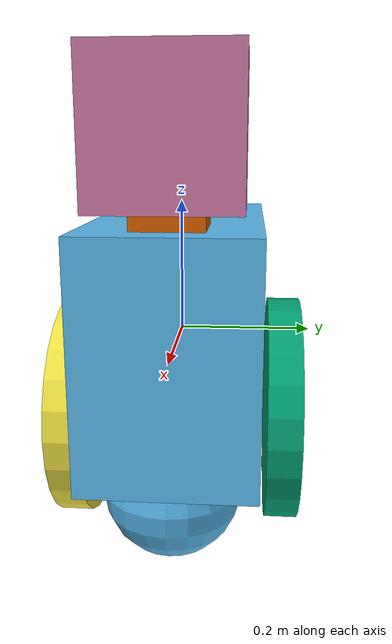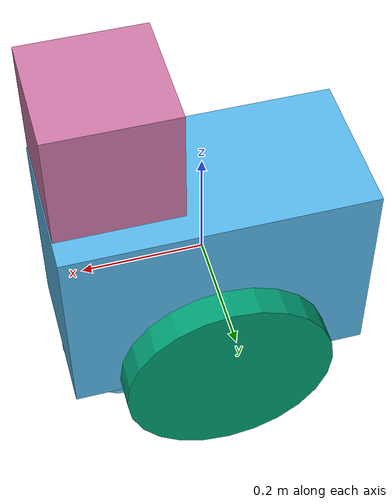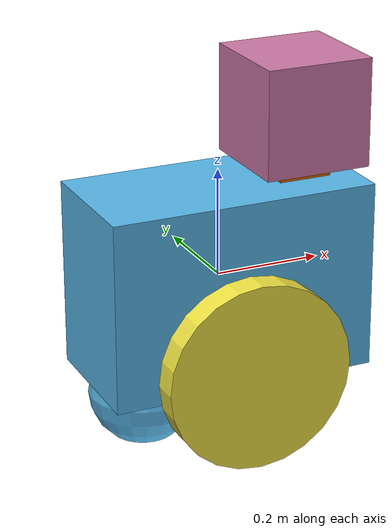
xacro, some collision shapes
<?xml version='1.0'?>

<robot name="udacity_bot" xmlns:xacro="http://www.ros.org/wiki/xacro">
  <xacro:include filename="$(find udacity_bot)/urdf/udacity_bot.gazebo" />
  <link name="robot_footprint"></link>

  <joint name="robot_footprint_joint" type="fixed">
    <origin xyz="0 0 0" rpy="0 0 0" />
    <parent link="robot_footprint"/>
    <child link="chassis" />
  </joint>

  <link name='chassis'>
    <pose>0 0 0.1 0 0 0</pose>

    <inertial>
      <mass value="20.0"/>
      <origin xyz="0.0 0 0" rpy=" 0 0 0"/>
      <inertia
          ixx="0.1" ixy="0" ixz="0"
          iyy="0.1" iyz="0"
          izz="0.1"
      />
    </inertial>

    <collision name='collision'>
      <origin xyz="0 0 0" rpy=" 0 0 0"/>
      <geometry>
        <box size=".5 .25 .35"/>
      </geometry>
    </collision>

    <visual name='chassis_visual'>
      <origin xyz="0 0 0" rpy=" 0 0 0"/>
      <geometry>
        <box size=".5 .25 .35"/>
      </geometry>
    </visual>

    <collision name='back_caster_collision'>
      <origin xyz="-0.25 0 -0.2" rpy=" 0 0 0"/>
      <geometry>
        <sphere radius="0.1"/>
      </geometry>
      <surface>
        <friction>
          <ode>
            <mu>0</mu>
            <mu2>0</mu2>
            <slip1>1.0</slip1>
            <slip2>1.0</slip2>
          </ode>
        </friction>
      </surface>
    </collision>

    <visual name='back_caster_visual'>
      <origin xyz="-0.15 0 -0.2" rpy=" 0 0 0"/>
      <geometry>
        <sphere radius="0.1"/>
      </geometry>
    </visual>

    <collision name='front_caster_collision'>
      <origin xyz="0.25 0 -0.2" rpy=" 0 0 0"/>
      <geometry>
        <sphere radius="0.1"/>
      </geometry>
      <surface>
        <friction>
          <ode>
            <mu>0</mu>
            <mu2>0</mu2>
            <slip1>1.0</slip1>
            <slip2>1.0</slip2>
          </ode>
        </friction>
      </surface>
    </collision>

    <visual name='front_caster_visual'>
      <origin xyz="0.15 0 -0.2" rpy=" 0 0 0"/>
      <geometry>
        <sphere radius="0.1"/>
      </geometry>
    </visual>

  </link>
  <link name='left_wheel'>

    <inertial>
      <mass value="7.0"/>
      <origin xyz="0.0 0 0" rpy=" 0 1.5707 1.5707"/>
      <inertia
          ixx="0.1" ixy="0" ixz="0"
          iyy="0.1" iyz="0"
          izz="0.1"
      />
    </inertial>

    <collision name='collision'>
      <origin xyz="0 0 0" rpy=" 0 1.5707 1.5707"/>
      <geometry>
        <cylinder length=".05" radius="0.175"/>
      </geometry>
    </collision>

    <visual name='left_wheel_visual'>
      <origin xyz="0 0 0" rpy=" 0 1.5707 1.5707"/>
      <geometry>
        <cylinder length=".05" radius="0.175"/>
      </geometry>
    </visual>
  </link>
  <link name='right_wheel'>

    <inertial>
      <mass value="7.0"/>
      <origin xyz="0.0 0 0" rpy=" 0 1.5707 1.5707"/>
      <inertia
          ixx="0.1" ixy="0" ixz="0"
          iyy="0.1" iyz="0"
          izz="0.1"
      />
    </inertial>

    <collision name='collision'>
      <origin xyz="0 0 0" rpy=" 0 1.5707 1.5707"/>
      <geometry>
        <cylinder length=".05" radius="0.175"/>
      </geometry>
    </collision>

    <visual name='right_wheel_visual'>
      <origin xyz="0 0 0" rpy=" 0 1.5707 1.5707"/>
      <geometry>
        <cylinder length=".05" radius="0.175"/>
      </geometry>
    </visual>
  </link>

  <joint type="continuous" name="left_wheel_hinge">
    <origin xyz="0 0.16 -0.13" rpy="0 0 0"/>
    <child link="left_wheel"/>
    <parent link="chassis"/>
    <axis xyz="0 1 0" rpy="0 0 0"/>
    <limit effort="10000" velocity="1000"/>
    <joint_properties damping="1.0" friction="1.0"/>
  </joint>

  <joint type="continuous" name="right_wheel_hinge">
    <origin xyz="0 -0.16 -0.13" rpy="0 0 0"/>
    <child link="right_wheel"/>
    <parent link="chassis"/>
    <axis xyz="0 1 0" rpy="0 0 0"/>
    <limit effort="10000" velocity="1000"/>
    <joint_properties damping="1.0" friction="1.0"/>
  </joint>

  <link name="camera">
  <inertial>
    <mass value="0.1"/>
    <origin xyz="0 0 0" rpy="0 0 0"/>
    <inertia ixx="1e-6" ixy="0" ixz="0" iyy="1e-6" iyz="0" izz="1e-6"/>
  </inertial>
  <collision name='collision'>
    <origin xyz="0 0 0" rpy="0 0 0"/>
    <geometry>
      <box size="0.05 0.05 0.05"/>
    </geometry>
  </collision>
  <visual name='camera'>
    <origin xyz="0 0 0" rpy="0 0 0"/>
    <geometry>
      <box size="0.05 0.05 0.05"/>
    </geometry>
  </visual>
  </link>

  <link name="mount">
  <inertial>
    <mass value="0.3"/>
    <origin xyz="0 0 0" rpy="0 0 0"/>
    <inertia ixx="0.1" ixy="0" ixz="0" iyy="0.1" iyz="0" izz="0.1"/>
  </inertial>
  <collision name='collision'>
    <origin xyz="0 0 0" rpy="0 0 0"/>
    <geometry>
      <box size="0.1 0.1 0.2"/>
    </geometry>
  </collision>
  <visual name='mount'>
    <origin xyz="0 0 0" rpy="0 0 0"/>
    <geometry>
      <box size="0.1 0.1 0.2"/>
    </geometry>
  </visual>
  </link>

  <link name="hokuyo">
  <inertial>
    <mass value="0.1"/>
    <origin xyz="0 0 0.1" rpy="0 0 0"/>
    <inertia ixx="1e-6" ixy="0" ixz="0" iyy="1e-6" iyz="0" izz="1e-6"/>
  </inertial>
  <collision>
    <origin xyz="0 0 0.1" rpy="0 0 0"/>
    <geometry>
      <box size="0.2 0.2 0.2"/>
    </geometry>
  </collision>
  <visual name="hokuyo">
    <origin xyz="0 0 0.1" rpy="0 0 0"/>
    <geometry>
      <mesh filename="package://udacity_bot/meshes/hokuyo.dae"/>
    </geometry>
  </visual>
  </link>

  <joint type="fixed" name="camera_joint">
    <origin xyz="0.02 0 -0.02" rpy="0 0 0"/>
    <child link="camera"/>
    <parent link="mount"/>
  </joint>

  <joint type="fixed" name="mount_joint">
    <origin xyz="0.15 0 0.2" rpy="0 0 0"/>
    <child link="mount"/>
    <parent link="chassis"/>
  </joint>

  <joint type="fixed" name="hokuyo_joint">
    <origin xyz="0 0 0" rpy="0 0 0"/>
    <child link="hokuyo"/>
    <parent link="mount"/>
  </joint>
</robot>
